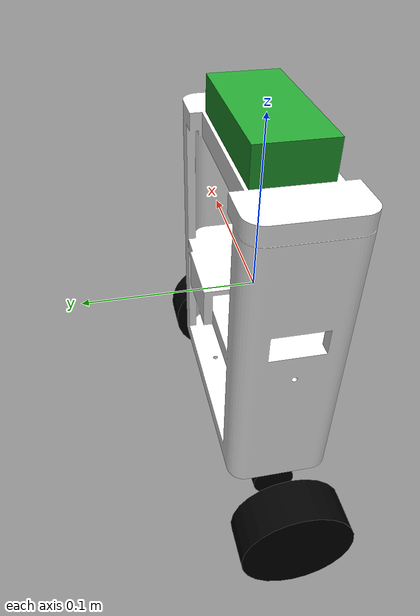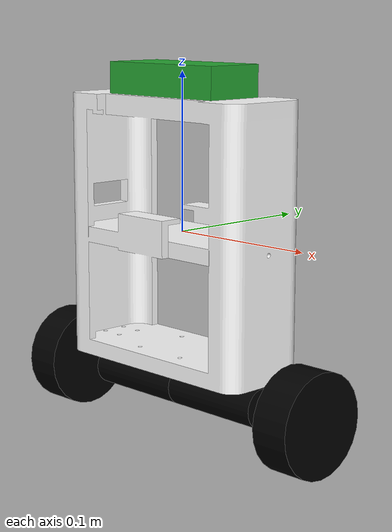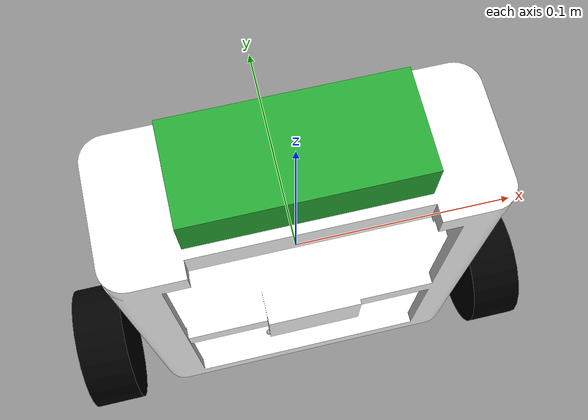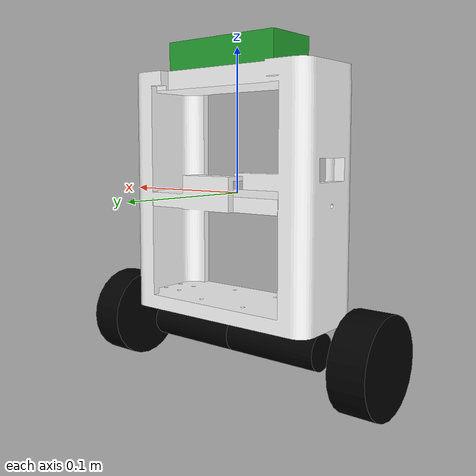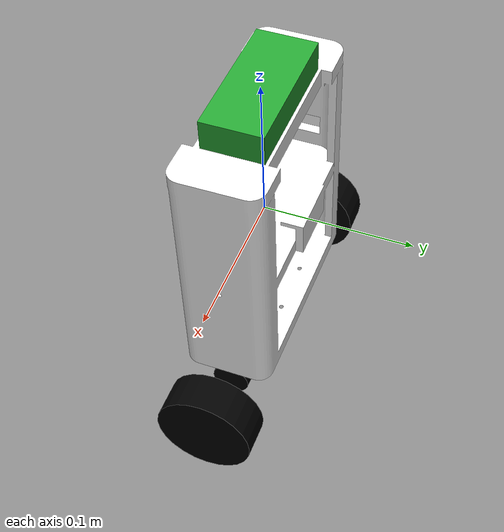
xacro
<?xml version="1.0"?>
<robot xmlns:xacro="http://www.ros.org/wiki/xacro" name="self_balancing_ai">

<xacro:property name="inertia_base">
	<inertia ixx="0.000889344343" ixy="0.0000000487885241" ixz="-0.00000353505815" iyy="0.00148391703" iyz="0.000000418243917" izz="0.000753680226"/>
</xacro:property>

<xacro:property name="inertia_motor">
	<inertia ixx="0.0000315494444" ixy="0.0" ixz="0.0" iyy="0.0000315494444" iyz="0.0" izz="0.00000842933333"/>
</xacro:property>

<xacro:property name="inertia_wheel">
	<inertia ixx="0.0000" ixy="0.0" ixz="0.0" iyy="0.0000" iyz="0.0" izz="0.00002734375"/>
</xacro:property>

<xacro:property name="inertia_battery">
 <inertia ixx="0.0000345" ixy="0.0" ixz="0.0" iyy="0.000146625" iyz="0.0" izz="0.000167325"/>
</xacro:property>
  <material name="Blue">

    <color rgba="${255/255} ${108/255} ${10/255} 0.9"/>
  </material>

  <material name="White">
    <color rgba="${255/255} ${255/255} ${255/255} ${0.9}"/>
  </material>

  <material name="Black">
    <color rgba="${0/255} ${0/255} ${0/255} ${0.9}"/>
  </material>

  <link name="dummy_link">
    <visual>
      <geometry>
        <box size="0.001 0.001 0.001"/>
      </geometry>
      <origin rpy="0 0 0" xyz="0 0 0"/>
      <material name="White"/>
    </visual>
    <collision>
      <geometry>
        <box size="0.001 0.001 0.001"/>
      </geometry>
      <origin rpy="0 0 0" xyz="0 0 0"/>
    </collision>
    <inertial>
      <mass value="0.001"/>
      <inertia ixx="0.000000000001" ixy="0.0" ixz="0.0" iyy="0.00000000001" iyz="0.0" izz="0.00000000001"/>
    </inertial>
  </link>

  <joint name="dummy_link_base_segway" type="fixed">
    <parent link="dummy_link"/>
    <child link="base_segway"/>
    <origin rpy="0 0 0" xyz="0 0 0.0"/>
  </joint>

  <link name="base_segway">
    <visual>
      <geometry>
        <mesh filename="package://self_balancing_ai/mesh/base.stl"/>
      </geometry>
      <origin rpy="0 0 0" xyz="-0.105 -0.04 -0.12"/>
      <material name="White"/>
    </visual>
    <collision>
      <geometry>
        <box size="0.15 0.06 0.17"/>
      </geometry>
      <origin rpy="0 0 0" xyz="0 0 0"/>
    </collision>
    <inertial>
      <mass value="0.287"/>
     <xacro:insert_block name="inertia_base"/>
    </inertial>
  </link>

  <link name="battery">
    <visual>
      <geometry>
        <box size="0.09 0.04 0.02"/>
      </geometry>
      <origin rpy="0 0 0" xyz="0 0 0"/>
      <material name="Green"/>
    </visual>
    <collision>
      <geometry>
        <box size="0.09 0.04 0.02"/>
      </geometry>
      <origin rpy="0 0 0" xyz="0 0 0"/>
    </collision>
    <inertial>
      <mass value="0.2"/>
     <xacro:insert_block name="inertia_battery"/>
    </inertial>
  </link>

  <joint name="base_segway_battery" type="fixed">
    <parent link="base_segway"/>
    <child link="battery"/>
    <origin rpy="0 0 0" xyz="0 0 0.095"/>
  </joint>

  <link name="motor_l">
    <visual>
      <geometry>
        <cylinder radius="0.0125" length="0.07"/>
      </geometry>
      <origin rpy="0 1.5708 0" xyz="0 0 0"/>
      <material name="Black"/>
    </visual>
    <collision>
      <geometry>
        <cylinder radius="0.0125" length="0.07"/>
      </geometry>
      <origin rpy="0 1.5708 0" xyz="0 0 0"/>
    </collision>
    <inertial>
      <mass value="0.1"/>
     <xacro:insert_block name="inertia_motor"/>
    </inertial>
  </link>

  <joint name="base_segway_motorl" type="fixed">
    <parent link="base_segway"/>
    <child link="motor_l"/>
    <origin rpy="0 0 0" xyz="0.035 0 -0.1"/>
  </joint>

  <link name="motor_r">
    <visual>
      <geometry>
        <cylinder radius="0.0125" length="0.07"/>
      </geometry>
      <origin rpy="0 1.5708 0" xyz="0 0 0"/>
      <material name="Black"/>
    </visual>
    <collision>
      <geometry>
        <cylinder radius="0.0125" length="0.07"/>
      </geometry>
      <origin rpy="0 1.5708 0" xyz="0 0 0"/>
    </collision>
    <inertial>
      <mass value="0.1"/>
     <xacro:insert_block name="inertia_motor"/>
    </inertial>
  </link>

  <joint name="base_segway_motorr" type="fixed">
    <parent link="base_segway"/>
    <child link="motor_r"/>
    <origin rpy="0 0 0" xyz="-0.035 0 -0.1"/>
  </joint>

  <link name="wheel_l">
    <visual>
      <geometry>
	      <cylinder radius="0.0325" length="0.025"/>
      </geometry>
      <origin rpy="0 1.5708 0" xyz="0 0 0"/>
      <material name="Black"/>
    </visual>
    <collision>
      <geometry>
	      <cylinder radius="0.0325" length="0.025"/>
      </geometry>
      <origin rpy="0 1.5708 0" xyz="0 0 0"/>
    </collision>
    <inertial>
      <mass value="0.035"/>
     <xacro:insert_block name="inertia_wheel"/>
    </inertial>
  </link>

 <joint name="motor_l_wheell" type="continuous">
    <parent link="motor_l"/>
    <child link="wheel_l"/>
    <origin rpy="0 0 0" xyz="0.07 0 0"/>
    <limit effort="0.3" velocity="1.0"  />
  </joint>

  <link name="wheel_r">
	  <visual>
      <geometry>
	      <cylinder radius="0.0325" length="0.025"/>
      </geometry>
      <origin rpy="0 -1.5708 0" xyz="0 0 0"/>
      <material name="Black"/>
    </visual>
    <collision>
      <geometry>
	      <cylinder radius="0.0325" length="0.025"/>
      </geometry>
      <origin rpy="0 -1.5708 0" xyz="0 0 0"/>
    </collision>
    <inertial>
      <mass value="0.035"/>
     <xacro:insert_block name="inertia_wheel"/>
    </inertial>
  </link>

  <joint name="motor_r_wheelr" type="continuous">
    <parent link="motor_r"/>
    <child link="wheel_r"/>
    <origin rpy="0 0 0" xyz="-0.07 0 0"/>
    <limit effort="0.3" velocity="1.0"  />
  </joint>

<!-- TRANSMISSION -->

  <transmission name="motor_l_wheell_trans">
    <type>transmission_interface/SimpleTransmission</type>
    <joint name="motor_l_wheell">
      <hardwareInterface>hardware_interface/EffortJointInterface</hardwareInterface>
    </joint>
    <actuator name="motor_l_wheell_motor">
      <hardwareInterface>hardware_interface/EffortJointInterface</hardwareInterface>
      <mechanicalReduction>1</mechanicalReduction>
    </actuator>
  </transmission>

  <transmission name="motor_r_wheelr_trans">
    <type>transmission_interface/SimpleTransmission</type>
    <joint name="motor_r_wheelr">
      <hardwareInterface>hardware_interface/EffortJointInterface</hardwareInterface>
    </joint>
    <actuator name="motor_r_segway_wheelr_motor">
      <hardwareInterface>hardware_interface/EffortJointInterface</hardwareInterface>
      <mechanicalReduction>1</mechanicalReduction>
    </actuator>
  </transmission>

<gazebo reference="base_segway">
  <material>Gazebo/White</material>
  <mu1>1e100</mu1>
  <mu2>1e100</mu2>
  <kp>1e-15</kp>
  <kd>1e-13</kd>
    <maxVel>0.0</maxVel>
    <selfCollide>true</selfCollide>
    <static>true</static>
    <turnGravityOff>false</turnGravityOff>
</gazebo>

<gazebo reference="battery">
  <material>Gazebo/Green</material>
  <mu1>1e100</mu1>
  <mu2>1e100</mu2>
  <kp>1e-15</kp>
  <kd>1e13</kd>
    <maxVel>0.0</maxVel>
    <selfCollide>true</selfCollide>
    <static>true</static>
    <turnGravityOff>false</turnGravityOff>
</gazebo>

<gazebo reference="motor_r">
  <material>Gazebo/White</material>
  <mu1>1e100</mu1>
  <mu2>1e100</mu2>
  <kp>1e-15</kp>
  <kd>1e13</kd>
    <maxVel>0.0</maxVel>
    <selfCollide>true</selfCollide>
    <static>true</static>
    <turnGravityOff>false</turnGravityOff>
</gazebo>

<gazebo reference="motor_l">
  <material>Gazebo/White</material>
  <mu1>1e100</mu1>
  <mu2>1e100</mu2>
  <kp>1e-15</kp>
  <kd>1e13</kd>
    <maxVel>0.0</maxVel>
    <selfCollide>true</selfCollide>
    <static>true</static>
    <turnGravityOff>false</turnGravityOff>
</gazebo>

<gazebo reference="wheel_l">
  <material>Gazebo/Black</material>
    <kp>1000000.0</kp>
    <kd>100.0</kd>
	  <mu1>0.8</mu1>
	  <mu2>0.8</mu2>

  <maxVel>0</maxVel>
  <minDepth>0.000</minDepth>
    <selfCollide>true</selfCollide>
    <static>false</static>
    <turnGravityOff>false</turnGravityOff>
</gazebo>

<gazebo reference="wheel_r">
  <material>Gazebo/Black</material>
    <kp>1000000.0</kp>
    <kd>100.0</kd>
	  <mu1>0.8</mu1>
	  <mu2>0.8</mu2>

  <maxVel>0</maxVel>
  <minDepth>0.000</minDepth>
    <selfCollide>true</selfCollide>
    <static>false</static>
    <turnGravityOff>false</turnGravityOff>
</gazebo>

  <gazebo>
      <plugin name="gazebo_ros_control" filename="libgazebo_ros_control.so">
      <robotNamespace>/self_balancing_ai</robotNamespace>
    </plugin>

		<plugin name="imu_plugin" filename="libgazebo_ros_imu.so">
			<alwaysOn>true</alwaysOn>
			<bodyName>base_segway</bodyName>
			<topicName>imu</topicName>
			<serviceName>imu_service</serviceName>
			<gaussianNoise>0.0</gaussianNoise>
			<rpyOffsets>0 0 0</rpyOffsets>
			<accelDrift>0.05 0.05 0.05</accelDrift>
			<accelGaussianNoise>0.035 0.035 0.03</accelGaussianNoise>
			<rateDrift>0.0 0.0 0.0</rateDrift>
        	<rateGaussianNoise>0.00 0.00 0.00</rateGaussianNoise>
        	<headingDrift>0.0</headingDrift>
        	<headingGaussianNoise>0.00</headingGaussianNoise>
			<updateRate>00</updateRate>
		</plugin>

  </gazebo>

</robot>
